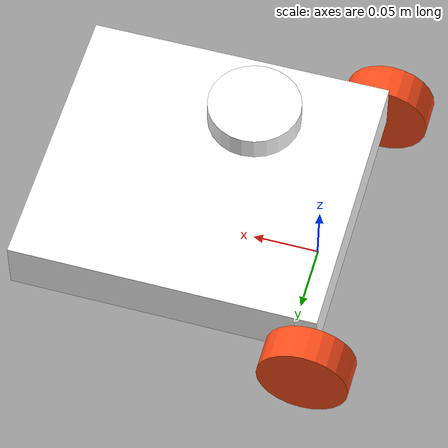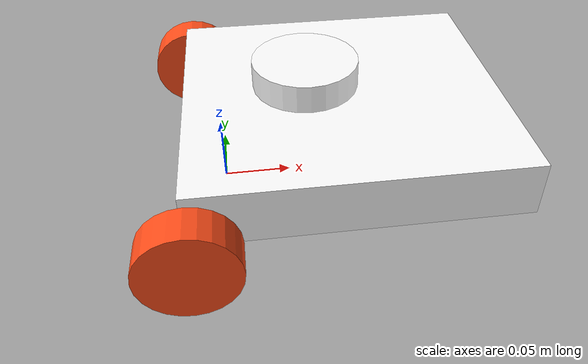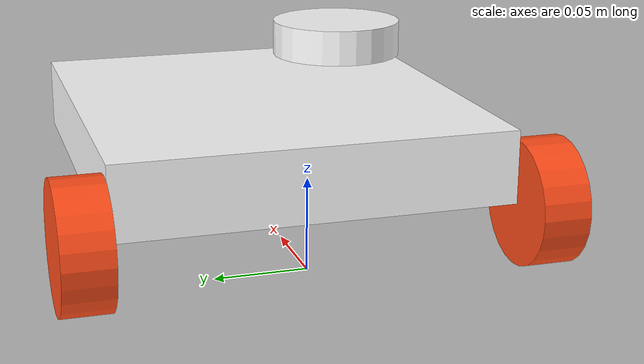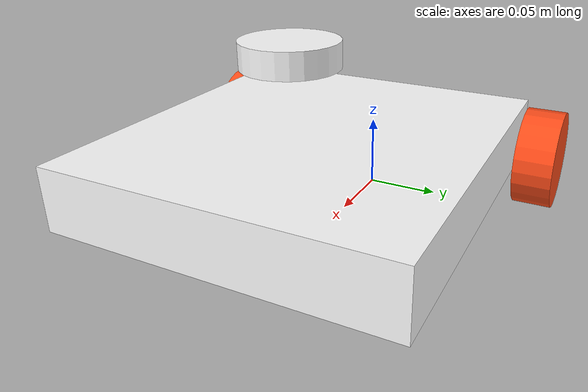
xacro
<?xml version="1.0"?>
<robot xmlns:xacro="http://www.ros.org/wiki/xacro"  name="bot-">

    <xacro:include filename="robot_core.xacro" />

    <!--xacro:include filename="gazebo_control.xacro" /-->

    <xacro:include filename="lidar.xacro" />

    <xacro:include filename="ros2_control.xacro" />

</robot>

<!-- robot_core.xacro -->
<robot xmlns:xacro="http://www.ros.org/wiki/xacro">

    <xacro:include filename="inertial_macros.xacro"/>

    <material name="white">
        <color rgba="1 1 1 1" />
    </material>

    <material name="orange">
        <color rgba="1 0.3 0.1 1"/>
    </material>

    <material name="blue">
        <color rgba="0.2 0.2 1 1"/>
    </material>

    <material name="black">
        <color rgba="0 0 0 1"/>
    </material>

    <link name="base_link">

    </link>

    <joint name="chassis_joint" type="fixed">
        <parent link="base_link"/>
        <child link="chassis"/>
        <origin xyz="0 0 0.034"/>
    </joint>

    <link name="chassis">
        <visual>
            <origin xyz="0.09 0 0.02" rpy="0 0 0"/>
            <geometry>
                <box size="0.23 0.214 0.040"/>
            </geometry>
            <material name="white"/>
        </visual>
        <collision>
            <origin xyz="0.09 0 0.02" rpy="0 0 0"/>
            <geometry>
                <box size="0.23 0.214 0.040"/>
            </geometry>
        </collision>
        <xacro:inertial_box mass="0.5" x="0.23" y="0.214" z="0.04">
            <origin xyz="0.09 0 0.02" rpy="0 0 0"/>
        </xacro:inertial_box>
    </link>
    <!--WHEELS-->
    <!--Left-->
     <joint name="wheel_joint_l" type="continuous">
        <parent link="base_link"/>
        <child link="wheel_l"/>
        <origin xyz="-0.022 0.1205 0.034" rpy="-${pi/2} 0 0"/>
        <axis xyz="0 0 1"/>
    </joint>

    <link name="wheel_l">
        <visual>
            <geometry>
                <cylinder length="0.026" radius="0.034"/>
            </geometry>
            <material name="orange"/>
        </visual>
        <collision>
            <geometry>
                <cylinder length="0.026" radius="0.034"/>
            </geometry>
        </collision>
        <xacro:inertial_cylinder mass="0.05" length="0.026" radius="0.034">
            <origin xyz="0 0 0" rpy="0 0 0"/>
        </xacro:inertial_cylinder>
    </link>
    <!--Left-->
     <joint name="wheel_joint_r" type="continuous">
        <parent link="base_link"/>
        <child link="wheel_r"/>
        <origin xyz="-0.022 -0.1205 0.034" rpy="${pi/2} 0 0"/>
        <axis xyz="0 0 -1"/>
    </joint>

    <link name="wheel_r">
        <visual>
            <geometry>
                <cylinder length="0.026" radius="0.034"/>
            </geometry>
            <material name="orange"/>
        </visual>
        <collision>
            <geometry>
                <cylinder length="0.026" radius="0.034"/>
            </geometry>
        </collision>
        <xacro:inertial_cylinder mass="0.05" length="0.026" radius="0.034">
            <origin xyz="0 0 0" rpy="0 0 0"/>
        </xacro:inertial_cylinder>
    </link>
    <!-- BALL JOINT-->
    <joint name="ball_joint" type="fixed">
        <parent link="chassis"/>
        <child link="ball"/>
        <origin xyz="0.145 0 0"/>
    </joint>

    <link name="ball">
        <visual>
            <geometry>
                <sphere radius="0.034"/>
            </geometry>
            <material name="black"/>
        </visual>
        <collision>
            <geometry>
                <sphere radius="0.034"/>
            </geometry>
            <material name="black"/>
        </collision>
        <xacro:inertial_sphere mass="0.1" radius="0.034">
            <origin xyz="0 0 0" rpy="0 0 0"/>
        </xacro:inertial_sphere>
    </link>
    <gazebo reference="ball">
        <mu1 value="0.001"/>
        <mu2 value="0.001"/>
    </gazebo>

</robot>

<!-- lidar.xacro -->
<robot xmlns:xacro="http://www.ros.org/wiki/xacro" >

<xacro:include filename="inertial_macros.xacro"/>

    <joint name="lidar_joint" type="fixed">
        <parent link="chassis"/>
        <child link="laser_frame"/>
        <origin xyz="0.06 -0.03456 0.07686" rpy="0 0 0"/>
    </joint>

    <link name="laser_frame">
        <visual>
            <geometry>
                <cylinder radius="0.03456" length="0.018520"/>
            </geometry>
            <material name="white"/>
        </visual>
        <collision>
            <geometry>
                <cylinder radius="0.03456" length="0.018529"/>
            </geometry>
        </collision>
        <xacro:inertial_cylinder mass="0.01" length="0.018520" radius="0.03456">
            <origin xyz="0 0 0" rpy="0 0 0"/>
        </xacro:inertial_cylinder>
    </link>

    <gazebo reference="laser_frame">
        <sensor name="laser" type="ray">
            <pose> 0 0 0 0 0 0 </pose>
            <visualize>true</visualize>
            <update_rate>10</update_rate>
            <ray>
                <scan>
                    <horizontal>
                        <samples>360</samples>
                        <min_angle>-3.14</min_angle>
                        <max_angle>3.14</max_angle>
                    </horizontal>
                </scan>
                <range>
                    <min>0.3</min>
                    <max>12</max>
                </range>
            </ray>
            <plugin name="laser_controller" filename="libgazebo_ros_ray_sensor.so">
                <ros>
                    <argument>~/out:=scan</argument>
                </ros>
                <output_type>sensor_msgs/LaserScan</output_type>
                <frame_name>laser_frame</frame_name>
            </plugin>
        </sensor>
    </gazebo>

</robot>
